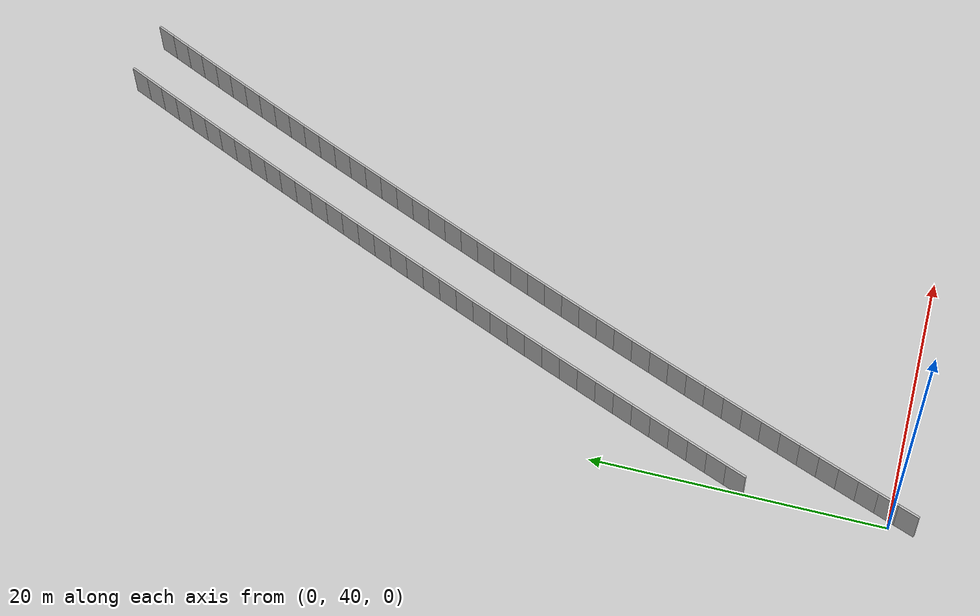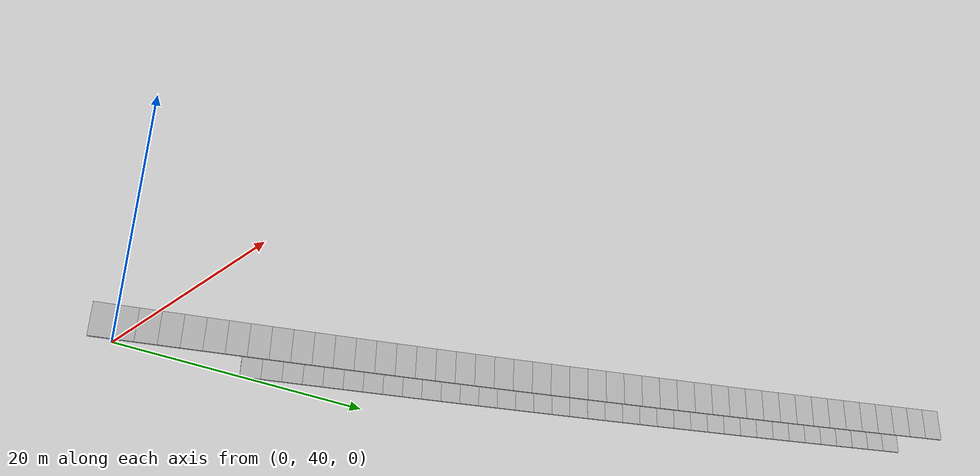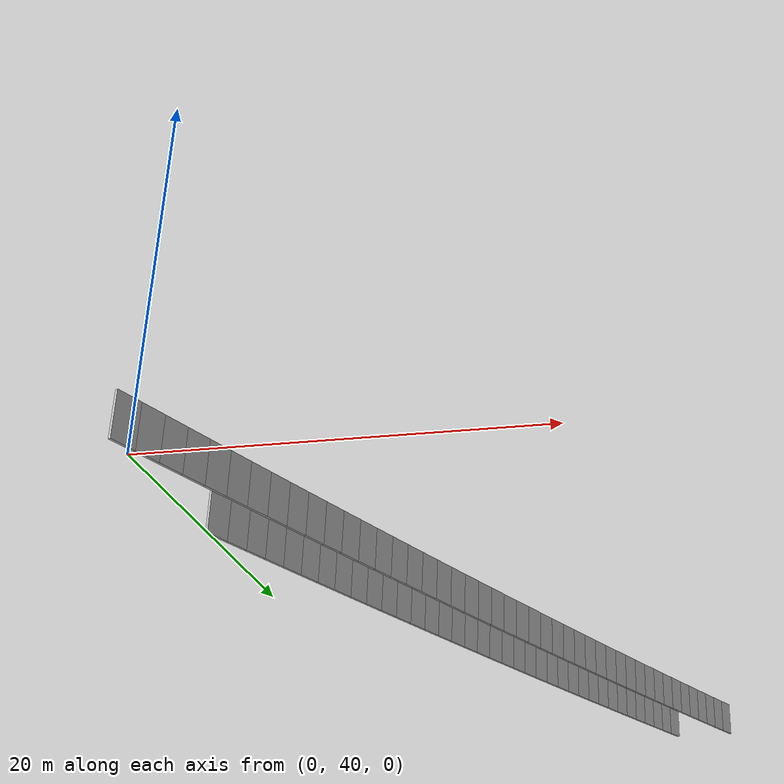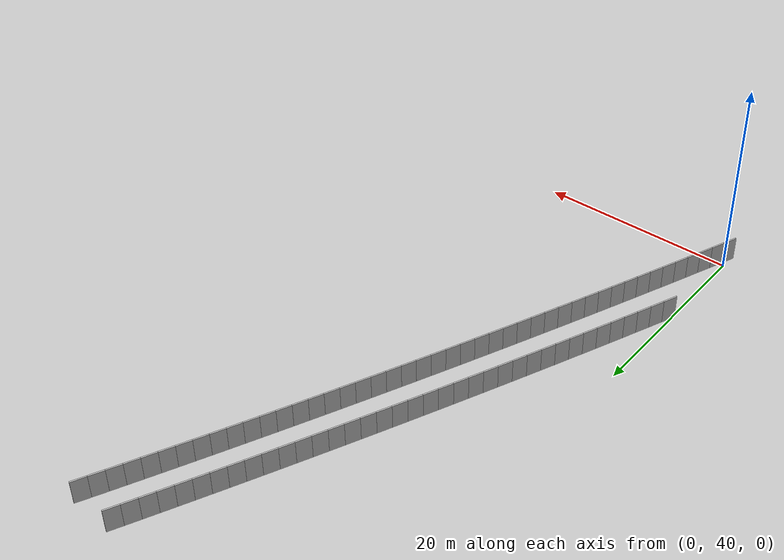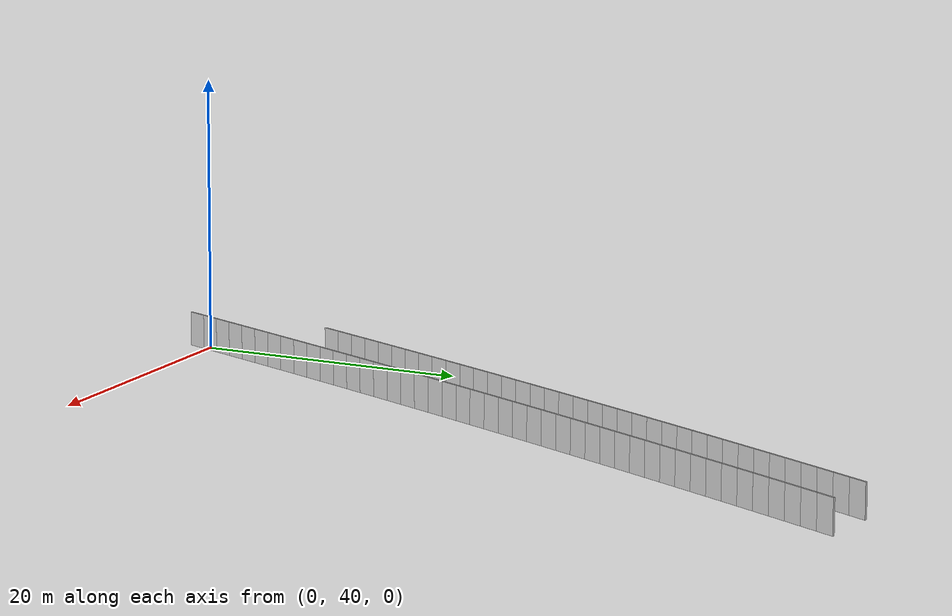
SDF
<?xml version="1.0" ?>
<sdf version="1.6">
  <model name="sps_0216">
    <pose frame="">0 0 0 0 -0 0</pose>
    <static>1</static>
    <self_collide>0</self_collide>
    <allow_auto_disable>0</allow_auto_disable>
    <link name="Wall4967">
      <kinematic>0</kinematic>
      <gravity>1</gravity>
      <self_collide>0</self_collide>
      <collision name="collision">
        <geometry>
          <box>
            <size>1.49666 0.15 2.5</size>
          </box>
        </geometry>
        <pose frame="">0 0 0 0 -0 0</pose>
      </collision>
      <visual name="visual">
        <geometry>
          <box>
            <size>1.49666 0.15 2.5</size>
          </box>
        </geometry>
        <pose frame="">0 0 0 0 -0 0</pose>
        <cast_shadows>1</cast_shadows>
        <transparency>0.0</transparency>
      </visual>
      <pose frame="">26.4168 99.3511 1.25 0 0 -2.01591</pose>
    </link>
    <link name="Wall4968">
      <kinematic>0</kinematic>
      <gravity>1</gravity>
      <self_collide>0</self_collide>
      <collision name="collision">
        <geometry>
          <box>
            <size>1.4965 0.15 2.5</size>
          </box>
        </geometry>
        <pose frame="">0 0 0 0 -0 0</pose>
      </collision>
      <visual name="visual">
        <geometry>
          <box>
            <size>1.4965 0.15 2.5</size>
          </box>
        </geometry>
        <pose frame="">0 0 0 0 -0 0</pose>
        <cast_shadows>1</cast_shadows>
        <transparency>0.0</transparency>
      </visual>
      <pose frame="">25.7736 97.9998 1.25 0 0 -2.01416</pose>
    </link>
    <link name="Wall4969">
      <kinematic>0</kinematic>
      <gravity>1</gravity>
      <self_collide>0</self_collide>
      <collision name="collision">
        <geometry>
          <box>
            <size>1.49654 0.15 2.5</size>
          </box>
        </geometry>
        <pose frame="">0 0 0 0 -0 0</pose>
      </collision>
      <visual name="visual">
        <geometry>
          <box>
            <size>1.49654 0.15 2.5</size>
          </box>
        </geometry>
        <pose frame="">0 0 0 0 -0 0</pose>
        <cast_shadows>1</cast_shadows>
        <transparency>0.0</transparency>
      </visual>
      <pose frame="">25.1327 96.6475 1.25 0 0 -2.0127</pose>
    </link>
    <link name="Wall4970">
      <kinematic>0</kinematic>
      <gravity>1</gravity>
      <self_collide>0</self_collide>
      <collision name="collision">
        <geometry>
          <box>
            <size>1.49654 0.15 2.5</size>
          </box>
        </geometry>
        <pose frame="">0 0 0 0 -0 0</pose>
      </collision>
      <visual name="visual">
        <geometry>
          <box>
            <size>1.49654 0.15 2.5</size>
          </box>
        </geometry>
        <pose frame="">0 0 0 0 -0 0</pose>
        <cast_shadows>1</cast_shadows>
        <transparency>0.0</transparency>
      </visual>
      <pose frame="">24.4937 95.2942 1.25 0 0 -2.01108</pose>
    </link>
    <link name="Wall4971">
      <kinematic>0</kinematic>
      <gravity>1</gravity>
      <self_collide>0</self_collide>
      <collision name="collision">
        <geometry>
          <box>
            <size>1.49647 0.15 2.5</size>
          </box>
        </geometry>
        <pose frame="">0 0 0 0 -0 0</pose>
      </collision>
      <visual name="visual">
        <geometry>
          <box>
            <size>1.49647 0.15 2.5</size>
          </box>
        </geometry>
        <pose frame="">0 0 0 0 -0 0</pose>
        <cast_shadows>1</cast_shadows>
        <transparency>0.0</transparency>
      </visual>
      <pose frame="">23.857 93.9399 1.25 0 0 -2.00943</pose>
    </link>
    <link name="Wall4972">
      <kinematic>0</kinematic>
      <gravity>1</gravity>
      <self_collide>0</self_collide>
      <collision name="collision">
        <geometry>
          <box>
            <size>1.49652 0.15 2.5</size>
          </box>
        </geometry>
        <pose frame="">0 0 0 0 -0 0</pose>
      </collision>
      <visual name="visual">
        <geometry>
          <box>
            <size>1.49652 0.15 2.5</size>
          </box>
        </geometry>
        <pose frame="">0 0 0 0 -0 0</pose>
        <cast_shadows>1</cast_shadows>
        <transparency>0.0</transparency>
      </visual>
      <pose frame="">23.2225 92.5846 1.25 0 0 -2.00798</pose>
    </link>
    <link name="Wall4973">
      <kinematic>0</kinematic>
      <gravity>1</gravity>
      <self_collide>0</self_collide>
      <collision name="collision">
        <geometry>
          <box>
            <size>1.49653 0.15 2.5</size>
          </box>
        </geometry>
        <pose frame="">0 0 0 0 -0 0</pose>
      </collision>
      <visual name="visual">
        <geometry>
          <box>
            <size>1.49653 0.15 2.5</size>
          </box>
        </geometry>
        <pose frame="">0 0 0 0 -0 0</pose>
        <cast_shadows>1</cast_shadows>
        <transparency>0.0</transparency>
      </visual>
      <pose frame="">22.59 91.2283 1.25 0 0 -2.00635</pose>
    </link>
    <link name="Wall4974">
      <kinematic>0</kinematic>
      <gravity>1</gravity>
      <self_collide>0</self_collide>
      <collision name="collision">
        <geometry>
          <box>
            <size>1.49649 0.15 2.5</size>
          </box>
        </geometry>
        <pose frame="">0 0 0 0 -0 0</pose>
      </collision>
      <visual name="visual">
        <geometry>
          <box>
            <size>1.49649 0.15 2.5</size>
          </box>
        </geometry>
        <pose frame="">0 0 0 0 -0 0</pose>
        <cast_shadows>1</cast_shadows>
        <transparency>0.0</transparency>
      </visual>
      <pose frame="">21.9596 89.871 1.25 0 0 -2.00475</pose>
    </link>
    <link name="Wall4975">
      <kinematic>0</kinematic>
      <gravity>1</gravity>
      <self_collide>0</self_collide>
      <collision name="collision">
        <geometry>
          <box>
            <size>1.49651 0.15 2.5</size>
          </box>
        </geometry>
        <pose frame="">0 0 0 0 -0 0</pose>
      </collision>
      <visual name="visual">
        <geometry>
          <box>
            <size>1.49651 0.15 2.5</size>
          </box>
        </geometry>
        <pose frame="">0 0 0 0 -0 0</pose>
        <cast_shadows>1</cast_shadows>
        <transparency>0.0</transparency>
      </visual>
      <pose frame="">21.3315 88.5127 1.25 0 0 -2.00312</pose>
    </link>
    <link name="Wall4976">
      <kinematic>0</kinematic>
      <gravity>1</gravity>
      <self_collide>0</self_collide>
      <collision name="collision">
        <geometry>
          <box>
            <size>1.49656 0.15 2.5</size>
          </box>
        </geometry>
        <pose frame="">0 0 0 0 -0 0</pose>
      </collision>
      <visual name="visual">
        <geometry>
          <box>
            <size>1.49656 0.15 2.5</size>
          </box>
        </geometry>
        <pose frame="">0 0 0 0 -0 0</pose>
        <cast_shadows>1</cast_shadows>
        <transparency>0.0</transparency>
      </visual>
      <pose frame="">20.7055 87.1534 1.25 0 0 -2.00163</pose>
    </link>
    <link name="Wall4977">
      <kinematic>0</kinematic>
      <gravity>1</gravity>
      <self_collide>0</self_collide>
      <collision name="collision">
        <geometry>
          <box>
            <size>1.49643 0.15 2.5</size>
          </box>
        </geometry>
        <pose frame="">0 0 0 0 -0 0</pose>
      </collision>
      <visual name="visual">
        <geometry>
          <box>
            <size>1.49643 0.15 2.5</size>
          </box>
        </geometry>
        <pose frame="">0 0 0 0 -0 0</pose>
        <cast_shadows>1</cast_shadows>
        <transparency>0.0</transparency>
      </visual>
      <pose frame="">20.0817 85.7931 1.25 0 0 -1.99987</pose>
    </link>
    <link name="Wall4978">
      <kinematic>0</kinematic>
      <gravity>1</gravity>
      <self_collide>0</self_collide>
      <collision name="collision">
        <geometry>
          <box>
            <size>1.49608 0.15 2.5</size>
          </box>
        </geometry>
        <pose frame="">0 0 0 0 -0 0</pose>
      </collision>
      <visual name="visual">
        <geometry>
          <box>
            <size>1.49608 0.15 2.5</size>
          </box>
        </geometry>
        <pose frame="">0 0 0 0 -0 0</pose>
        <cast_shadows>1</cast_shadows>
        <transparency>0.0</transparency>
      </visual>
      <pose frame="">19.4601 84.4321 1.25 0 0 -1.99868</pose>
    </link>
    <link name="Wall4979">
      <kinematic>0</kinematic>
      <gravity>1</gravity>
      <self_collide>0</self_collide>
      <collision name="collision">
        <geometry>
          <box>
            <size>1.49654 0.15 2.5</size>
          </box>
        </geometry>
        <pose frame="">0 0 0 0 -0 0</pose>
      </collision>
      <visual name="visual">
        <geometry>
          <box>
            <size>1.49654 0.15 2.5</size>
          </box>
        </geometry>
        <pose frame="">0 0 0 0 -0 0</pose>
        <cast_shadows>1</cast_shadows>
        <transparency>0.0</transparency>
      </visual>
      <pose frame="">18.8405 83.0701 1.25 0 0 -1.99679</pose>
    </link>
    <link name="Wall4980">
      <kinematic>0</kinematic>
      <gravity>1</gravity>
      <self_collide>0</self_collide>
      <collision name="collision">
        <geometry>
          <box>
            <size>1.4966 0.15 2.5</size>
          </box>
        </geometry>
        <pose frame="">0 0 0 0 -0 0</pose>
      </collision>
      <visual name="visual">
        <geometry>
          <box>
            <size>1.4966 0.15 2.5</size>
          </box>
        </geometry>
        <pose frame="">0 0 0 0 -0 0</pose>
        <cast_shadows>1</cast_shadows>
        <transparency>0.0</transparency>
      </visual>
      <pose frame="">18.2231 81.7068 1.25 0 0 -1.99529</pose>
    </link>
    <link name="Wall4981">
      <kinematic>0</kinematic>
      <gravity>1</gravity>
      <self_collide>0</self_collide>
      <collision name="collision">
        <geometry>
          <box>
            <size>1.49647 0.15 2.5</size>
          </box>
        </geometry>
        <pose frame="">0 0 0 0 -0 0</pose>
      </collision>
      <visual name="visual">
        <geometry>
          <box>
            <size>1.49647 0.15 2.5</size>
          </box>
        </geometry>
        <pose frame="">0 0 0 0 -0 0</pose>
        <cast_shadows>1</cast_shadows>
        <transparency>0.0</transparency>
      </visual>
      <pose frame="">17.6078 80.3426 1.25 0 0 -1.99372</pose>
    </link>
    <link name="Wall4982">
      <kinematic>0</kinematic>
      <gravity>1</gravity>
      <self_collide>0</self_collide>
      <collision name="collision">
        <geometry>
          <box>
            <size>1.49639 0.15 2.5</size>
          </box>
        </geometry>
        <pose frame="">0 0 0 0 -0 0</pose>
      </collision>
      <visual name="visual">
        <geometry>
          <box>
            <size>1.49639 0.15 2.5</size>
          </box>
        </geometry>
        <pose frame="">0 0 0 0 -0 0</pose>
        <cast_shadows>1</cast_shadows>
        <transparency>0.0</transparency>
      </visual>
      <pose frame="">16.9948 78.9775 1.25 0 0 -1.992</pose>
    </link>
    <link name="Wall4983">
      <kinematic>0</kinematic>
      <gravity>1</gravity>
      <self_collide>0</self_collide>
      <collision name="collision">
        <geometry>
          <box>
            <size>1.49668 0.15 2.5</size>
          </box>
        </geometry>
        <pose frame="">0 0 0 0 -0 0</pose>
      </collision>
      <visual name="visual">
        <geometry>
          <box>
            <size>1.49668 0.15 2.5</size>
          </box>
        </geometry>
        <pose frame="">0 0 0 0 -0 0</pose>
        <cast_shadows>1</cast_shadows>
        <transparency>0.0</transparency>
      </visual>
      <pose frame="">16.384 77.6113 1.25 0 0 -1.99044</pose>
    </link>
    <link name="Wall4984">
      <kinematic>0</kinematic>
      <gravity>1</gravity>
      <self_collide>0</self_collide>
      <collision name="collision">
        <geometry>
          <box>
            <size>1.49629 0.15 2.5</size>
          </box>
        </geometry>
        <pose frame="">0 0 0 0 -0 0</pose>
      </collision>
      <visual name="visual">
        <geometry>
          <box>
            <size>1.49629 0.15 2.5</size>
          </box>
        </geometry>
        <pose frame="">0 0 0 0 -0 0</pose>
        <cast_shadows>1</cast_shadows>
        <transparency>0.0</transparency>
      </visual>
      <pose frame="">15.7753 76.2442 1.25 0 0 -1.98895</pose>
    </link>
    <link name="Wall4985">
      <kinematic>0</kinematic>
      <gravity>1</gravity>
      <self_collide>0</self_collide>
      <collision name="collision">
        <geometry>
          <box>
            <size>1.49674 0.15 2.5</size>
          </box>
        </geometry>
        <pose frame="">0 0 0 0 -0 0</pose>
      </collision>
      <visual name="visual">
        <geometry>
          <box>
            <size>1.49674 0.15 2.5</size>
          </box>
        </geometry>
        <pose frame="">0 0 0 0 -0 0</pose>
        <cast_shadows>1</cast_shadows>
        <transparency>0.0</transparency>
      </visual>
      <pose frame="">15.1688 74.8761 1.25 0 0 -1.98721</pose>
    </link>
    <link name="Wall4986">
      <kinematic>0</kinematic>
      <gravity>1</gravity>
      <self_collide>0</self_collide>
      <collision name="collision">
        <geometry>
          <box>
            <size>1.4966 0.15 2.5</size>
          </box>
        </geometry>
        <pose frame="">0 0 0 0 -0 0</pose>
      </collision>
      <visual name="visual">
        <geometry>
          <box>
            <size>1.4966 0.15 2.5</size>
          </box>
        </geometry>
        <pose frame="">0 0 0 0 -0 0</pose>
        <cast_shadows>1</cast_shadows>
        <transparency>0.0</transparency>
      </visual>
      <pose frame="">14.5644 73.5069 1.25 0 0 -1.98578</pose>
    </link>
    <link name="Wall4987">
      <kinematic>0</kinematic>
      <gravity>1</gravity>
      <self_collide>0</self_collide>
      <collision name="collision">
        <geometry>
          <box>
            <size>1.49649 0.15 2.5</size>
          </box>
        </geometry>
        <pose frame="">0 0 0 0 -0 0</pose>
      </collision>
      <visual name="visual">
        <geometry>
          <box>
            <size>1.49649 0.15 2.5</size>
          </box>
        </geometry>
        <pose frame="">0 0 0 0 -0 0</pose>
        <cast_shadows>1</cast_shadows>
        <transparency>0.0</transparency>
      </visual>
      <pose frame="">13.9621 72.1369 1.25 0 0 -1.98421</pose>
    </link>
    <link name="Wall4988">
      <kinematic>0</kinematic>
      <gravity>1</gravity>
      <self_collide>0</self_collide>
      <collision name="collision">
        <geometry>
          <box>
            <size>1.49643 0.15 2.5</size>
          </box>
        </geometry>
        <pose frame="">0 0 0 0 -0 0</pose>
      </collision>
      <visual name="visual">
        <geometry>
          <box>
            <size>1.49643 0.15 2.5</size>
          </box>
        </geometry>
        <pose frame="">0 0 0 0 -0 0</pose>
        <cast_shadows>1</cast_shadows>
        <transparency>0.0</transparency>
      </visual>
      <pose frame="">13.3621 70.766 1.25 0 0 -1.98249</pose>
    </link>
    <link name="Wall4989">
      <kinematic>0</kinematic>
      <gravity>1</gravity>
      <self_collide>0</self_collide>
      <collision name="collision">
        <geometry>
          <box>
            <size>1.49652 0.15 2.5</size>
          </box>
        </geometry>
        <pose frame="">0 0 0 0 -0 0</pose>
      </collision>
      <visual name="visual">
        <geometry>
          <box>
            <size>1.49652 0.15 2.5</size>
          </box>
        </geometry>
        <pose frame="">0 0 0 0 -0 0</pose>
        <cast_shadows>1</cast_shadows>
        <transparency>0.0</transparency>
      </visual>
      <pose frame="">12.7642 69.3941 1.25 0 0 -1.981</pose>
    </link>
    <link name="Wall4990">
      <kinematic>0</kinematic>
      <gravity>1</gravity>
      <self_collide>0</self_collide>
      <collision name="collision">
        <geometry>
          <box>
            <size>1.49643 0.15 2.5</size>
          </box>
        </geometry>
        <pose frame="">0 0 0 0 -0 0</pose>
      </collision>
      <visual name="visual">
        <geometry>
          <box>
            <size>1.49643 0.15 2.5</size>
          </box>
        </geometry>
        <pose frame="">0 0 0 0 -0 0</pose>
        <cast_shadows>1</cast_shadows>
        <transparency>0.0</transparency>
      </visual>
      <pose frame="">12.1685 68.0213 1.25 0 0 -1.97942</pose>
    </link>
    <link name="Wall4991">
      <kinematic>0</kinematic>
      <gravity>1</gravity>
      <self_collide>0</self_collide>
      <collision name="collision">
        <geometry>
          <box>
            <size>1.49663 0.15 2.5</size>
          </box>
        </geometry>
        <pose frame="">0 0 0 0 -0 0</pose>
      </collision>
      <visual name="visual">
        <geometry>
          <box>
            <size>1.49663 0.15 2.5</size>
          </box>
        </geometry>
        <pose frame="">0 0 0 0 -0 0</pose>
        <cast_shadows>1</cast_shadows>
        <transparency>0.0</transparency>
      </visual>
      <pose frame="">11.575 66.6475 1.25 0 0 -1.97777</pose>
    </link>
    <link name="Wall4992">
      <kinematic>0</kinematic>
      <gravity>1</gravity>
      <self_collide>0</self_collide>
      <collision name="collision">
        <geometry>
          <box>
            <size>1.49656 0.15 2.5</size>
          </box>
        </geometry>
        <pose frame="">0 0 0 0 -0 0</pose>
      </collision>
      <visual name="visual">
        <geometry>
          <box>
            <size>1.49656 0.15 2.5</size>
          </box>
        </geometry>
        <pose frame="">0 0 0 0 -0 0</pose>
        <cast_shadows>1</cast_shadows>
        <transparency>0.0</transparency>
      </visual>
      <pose frame="">10.9836 65.2727 1.25 0 0 -1.97632</pose>
    </link>
    <link name="Wall4993">
      <kinematic>0</kinematic>
      <gravity>1</gravity>
      <self_collide>0</self_collide>
      <collision name="collision">
        <geometry>
          <box>
            <size>1.49655 0.15 2.5</size>
          </box>
        </geometry>
        <pose frame="">0 0 0 0 -0 0</pose>
      </collision>
      <visual name="visual">
        <geometry>
          <box>
            <size>1.49655 0.15 2.5</size>
          </box>
        </geometry>
        <pose frame="">0 0 0 0 -0 0</pose>
        <cast_shadows>1</cast_shadows>
        <transparency>0.0</transparency>
      </visual>
      <pose frame="">10.3945 63.897 1.25 0 0 -1.97455</pose>
    </link>
    <link name="Wall4994">
      <kinematic>0</kinematic>
      <gravity>1</gravity>
      <self_collide>0</self_collide>
      <collision name="collision">
        <geometry>
          <box>
            <size>1.49654 0.15 2.5</size>
          </box>
        </geometry>
        <pose frame="">0 0 0 0 -0 0</pose>
      </collision>
      <visual name="visual">
        <geometry>
          <box>
            <size>1.49654 0.15 2.5</size>
          </box>
        </geometry>
        <pose frame="">0 0 0 0 -0 0</pose>
        <cast_shadows>1</cast_shadows>
        <transparency>0.0</transparency>
      </visual>
      <pose frame="">9.80746 62.5204 1.25 0 0 -1.97318</pose>
    </link>
    <link name="Wall4995">
      <kinematic>0</kinematic>
      <gravity>1</gravity>
      <self_collide>0</self_collide>
      <collision name="collision">
        <geometry>
          <box>
            <size>1.49646 0.15 2.5</size>
          </box>
        </geometry>
        <pose frame="">0 0 0 0 -0 0</pose>
      </collision>
      <visual name="visual">
        <geometry>
          <box>
            <size>1.49646 0.15 2.5</size>
          </box>
        </geometry>
        <pose frame="">0 0 0 0 -0 0</pose>
        <cast_shadows>1</cast_shadows>
        <transparency>0.0</transparency>
      </visual>
      <pose frame="">9.22265 61.1429 1.25 0 0 -1.97138</pose>
    </link>
    <link name="Wall4996">
      <kinematic>0</kinematic>
      <gravity>1</gravity>
      <self_collide>0</self_collide>
      <collision name="collision">
        <geometry>
          <box>
            <size>1.49643 0.15 2.5</size>
          </box>
        </geometry>
        <pose frame="">0 0 0 0 -0 0</pose>
      </collision>
      <visual name="visual">
        <geometry>
          <box>
            <size>1.49643 0.15 2.5</size>
          </box>
        </geometry>
        <pose frame="">0 0 0 0 -0 0</pose>
        <cast_shadows>1</cast_shadows>
        <transparency>0.0</transparency>
      </visual>
      <pose frame="">8.64007 59.7645 1.25 0 0 -1.96997</pose>
    </link>
    <link name="Wall4997">
      <kinematic>0</kinematic>
      <gravity>1</gravity>
      <self_collide>0</self_collide>
      <collision name="collision">
        <geometry>
          <box>
            <size>1.49663 0.15 2.5</size>
          </box>
        </geometry>
        <pose frame="">0 0 0 0 -0 0</pose>
      </collision>
      <visual name="visual">
        <geometry>
          <box>
            <size>1.49663 0.15 2.5</size>
          </box>
        </geometry>
        <pose frame="">0 0 0 0 -0 0</pose>
        <cast_shadows>1</cast_shadows>
        <transparency>0.0</transparency>
      </visual>
      <pose frame="">8.05965 58.3851 1.25 0 0 -1.96819</pose>
    </link>
    <link name="Wall4998">
      <kinematic>0</kinematic>
      <gravity>1</gravity>
      <self_collide>0</self_collide>
      <collision name="collision">
        <geometry>
          <box>
            <size>1.49642 0.15 2.5</size>
          </box>
        </geometry>
        <pose frame="">0 0 0 0 -0 0</pose>
      </collision>
      <visual name="visual">
        <geometry>
          <box>
            <size>1.49642 0.15 2.5</size>
          </box>
        </geometry>
        <pose frame="">0 0 0 0 -0 0</pose>
        <cast_shadows>1</cast_shadows>
        <transparency>0.0</transparency>
      </visual>
      <pose frame="">7.48144 57.0048 1.25 0 0 -1.96679</pose>
    </link>
    <link name="Wall4999">
      <kinematic>0</kinematic>
      <gravity>1</gravity>
      <self_collide>0</self_collide>
      <collision name="collision">
        <geometry>
          <box>
            <size>1.49655 0.15 2.5</size>
          </box>
        </geometry>
        <pose frame="">0 0 0 0 -0 0</pose>
      </collision>
      <visual name="visual">
        <geometry>
          <box>
            <size>1.49655 0.15 2.5</size>
          </box>
        </geometry>
        <pose frame="">0 0 0 0 -0 0</pose>
        <cast_shadows>1</cast_shadows>
        <transparency>0.0</transparency>
      </visual>
      <pose frame="">6.90545 55.6236 1.25 0 0 -1.96499</pose>
    </link>
    <link name="Wall5000">
      <kinematic>0</kinematic>
      <gravity>1</gravity>
      <self_collide>0</self_collide>
      <collision name="collision">
        <geometry>
          <box>
            <size>1.49659 0.15 2.5</size>
          </box>
        </geometry>
        <pose frame="">0 0 0 0 -0 0</pose>
      </collision>
      <visual name="visual">
        <geometry>
          <box>
            <size>1.49659 0.15 2.5</size>
          </box>
        </geometry>
        <pose frame="">0 0 0 0 -0 0</pose>
        <cast_shadows>1</cast_shadows>
        <transparency>0.0</transparency>
      </visual>
      <pose frame="">6.33166 54.2414 1.25 0 0 -1.96356</pose>
    </link>
    <link name="Wall5001">
      <kinematic>0</kinematic>
      <gravity>1</gravity>
      <self_collide>0</self_collide>
      <collision name="collision">
        <geometry>
          <box>
            <size>1.49643 0.15 2.5</size>
          </box>
        </geometry>
        <pose frame="">0 0 0 0 -0 0</pose>
      </collision>
      <visual name="visual">
        <geometry>
          <box>
            <size>1.49643 0.15 2.5</size>
          </box>
        </geometry>
        <pose frame="">0 0 0 0 -0 0</pose>
        <cast_shadows>1</cast_shadows>
        <transparency>0.0</transparency>
      </visual>
      <pose frame="">5.75994 52.8584 1.25 0 0 -1.96202</pose>
    </link>
    <link name="Wall5002">
      <kinematic>0</kinematic>
      <gravity>1</gravity>
      <self_collide>0</self_collide>
      <collision name="collision">
        <geometry>
          <box>
            <size>1.49606 0.15 2.5</size>
          </box>
        </geometry>
        <pose frame="">0 0 0 0 -0 0</pose>
      </collision>
      <visual name="visual">
        <geometry>
          <box>
            <size>1.49606 0.15 2.5</size>
          </box>
        </geometry>
        <pose frame="">0 0 0 0 -0 0</pose>
        <cast_shadows>1</cast_shadows>
        <transparency>0.0</transparency>
      </visual>
      <pose frame="">5.19033 51.4748 1.25 0 0 -1.96067</pose>
    </link>
    <link name="Wall5003">
      <kinematic>0</kinematic>
      <gravity>1</gravity>
      <self_collide>0</self_collide>
      <collision name="collision">
        <geometry>
          <box>
            <size>1.49665 0.15 2.5</size>
          </box>
        </geometry>
        <pose frame="">0 0 0 0 -0 0</pose>
      </collision>
      <visual name="visual">
        <geometry>
          <box>
            <size>1.49665 0.15 2.5</size>
          </box>
        </geometry>
        <pose frame="">0 0 0 0 -0 0</pose>
        <cast_shadows>1</cast_shadows>
        <transparency>0.0</transparency>
      </visual>
      <pose frame="">4.62295 50.0902 1.25 0 0 -1.95874</pose>
    </link>
    <link name="Wall5004">
      <kinematic>0</kinematic>
      <gravity>1</gravity>
      <self_collide>0</self_collide>
      <collision name="collision">
        <geometry>
          <box>
            <size>1.49692 0.15 2.5</size>
          </box>
        </geometry>
        <pose frame="">0 0 0 0 -0 0</pose>
      </collision>
      <visual name="visual">
        <geometry>
          <box>
            <size>1.49692 0.15 2.5</size>
          </box>
        </geometry>
        <pose frame="">0 0 0 0 -0 0</pose>
        <cast_shadows>1</cast_shadows>
        <transparency>0.0</transparency>
      </visual>
      <pose frame="">4.05785 48.7042 1.25 0 0 -1.95713</pose>
    </link>
    <link name="Wall5005">
      <kinematic>0</kinematic>
      <gravity>1</gravity>
      <self_collide>0</self_collide>
      <collision name="collision">
        <geometry>
          <box>
            <size>1.49641 0.15 2.5</size>
          </box>
        </geometry>
        <pose frame="">0 0 0 0 -0 0</pose>
      </collision>
      <visual name="visual">
        <geometry>
          <box>
            <size>1.49641 0.15 2.5</size>
          </box>
        </geometry>
        <pose frame="">0 0 0 0 -0 0</pose>
        <cast_shadows>1</cast_shadows>
        <transparency>0.0</transparency>
      </visual>
      <pose frame="">3.49496 47.3174 1.25 0 0 -1.95564</pose>
    </link>
    <link name="Wall5006">
      <kinematic>0</kinematic>
      <gravity>1</gravity>
      <self_collide>0</self_collide>
      <collision name="collision">
        <geometry>
          <box>
            <size>1.49657 0.15 2.5</size>
          </box>
        </geometry>
        <pose frame="">0 0 0 0 -0 0</pose>
      </collision>
      <visual name="visual">
        <geometry>
          <box>
            <size>1.49657 0.15 2.5</size>
          </box>
        </geometry>
        <pose frame="">0 0 0 0 -0 0</pose>
        <cast_shadows>1</cast_shadows>
        <transparency>0.0</transparency>
      </visual>
      <pose frame="">2.93426 45.9299 1.25 0 0 -1.95405</pose>
    </link>
    <link name="Wall5007">
      <kinematic>0</kinematic>
      <gravity>1</gravity>
      <self_collide>0</self_collide>
      <collision name="collision">
        <geometry>
          <box>
            <size>1.4964 0.15 2.5</size>
          </box>
        </geometry>
        <pose frame="">0 0 0 0 -0 0</pose>
      </collision>
      <visual name="visual">
        <geometry>
          <box>
            <size>1.4964 0.15 2.5</size>
          </box>
        </geometry>
        <pose frame="">0 0 0 0 -0 0</pose>
        <cast_shadows>1</cast_shadows>
        <transparency>0.0</transparency>
      </visual>
      <pose frame="">2.37585 44.5415 1.25 0 0 -1.95234</pose>
    </link>
    <link name="Wall5008">
      <kinematic>0</kinematic>
      <gravity>1</gravity>
      <self_collide>0</self_collide>
      <collision name="collision">
        <geometry>
          <box>
            <size>1.49661 0.15 2.5</size>
          </box>
        </geometry>
        <pose frame="">0 0 0 0 -0 0</pose>
      </collision>
      <visual name="visual">
        <geometry>
          <box>
            <size>1.49661 0.15 2.5</size>
          </box>
        </geometry>
        <pose frame="">0 0 0 0 -0 0</pose>
        <cast_shadows>1</cast_shadows>
        <transparency>0.0</transparency>
      </visual>
      <pose frame="">1.81966 43.1522 1.25 0 0 -1.95083</pose>
    </link>
    <link name="Wall5009">
      <kinematic>0</kinematic>
      <gravity>1</gravity>
      <self_collide>0</self_collide>
      <collision name="collision">
        <geometry>
          <box>
            <size>1.49656 0.15 2.5</size>
          </box>
        </geometry>
        <pose frame="">0 0 0 0 -0 0</pose>
      </collision>
      <visual name="visual">
        <geometry>
          <box>
            <size>1.49656 0.15 2.5</size>
          </box>
        </geometry>
        <pose frame="">0 0 0 0 -0 0</pose>
        <cast_shadows>1</cast_shadows>
        <transparency>0.0</transparency>
      </visual>
      <pose frame="">1.26556 41.762 1.25 0 0 -1.94931</pose>
    </link>
    <link name="Wall5010">
      <kinematic>0</kinematic>
      <gravity>1</gravity>
      <self_collide>0</self_collide>
      <collision name="collision">
        <geometry>
          <box>
            <size>1.49647 0.15 2.5</size>
          </box>
        </geometry>
        <pose frame="">0 0 0 0 -0 0</pose>
      </collision>
      <visual name="visual">
        <geometry>
          <box>
            <size>1.49647 0.15 2.5</size>
          </box>
        </geometry>
        <pose frame="">0 0 0 0 -0 0</pose>
        <cast_shadows>1</cast_shadows>
        <transparency>0.0</transparency>
      </visual>
      <pose frame="">0.713554 40.371 1.25 0 0 -1.94784</pose>
    </link>
    <link name="Wall5011">
      <kinematic>0</kinematic>
      <gravity>1</gravity>
      <self_collide>0</self_collide>
      <collision name="collision">
        <geometry>
          <box>
            <size>1.49659 0.15 2.5</size>
          </box>
        </geometry>
        <pose frame="">0 0 0 0 -0 0</pose>
      </collision>
      <visual name="visual">
        <geometry>
          <box>
            <size>1.49659 0.15 2.5</size>
          </box>
        </geometry>
        <pose frame="">0 0 0 0 -0 0</pose>
        <cast_shadows>1</cast_shadows>
        <transparency>0.0</transparency>
      </visual>
      <pose frame="">0.163749 38.9791 1.25 0 0 -1.94615</pose>
    </link>
    <link name="Wall6764">
      <kinematic>0</kinematic>
      <gravity>1</gravity>
      <self_collide>0</self_collide>
      <collision name="collision">
        <geometry>
          <box>
            <size>1.50318 0.15 2.5</size>
          </box>
        </geometry>
        <pose frame="">0 0 0 0 -0 0</pose>
      </collision>
      <visual name="visual">
        <geometry>
          <box>
            <size>1.50318 0.15 2.5</size>
          </box>
        </geometry>
        <pose frame="">0 0 0 0 -0 0</pose>
        <cast_shadows>1</cast_shadows>
        <transparency>0.0</transparency>
      </visual>
      <pose frame="">22.035 99.7762 1.25 0 0 -2.01425</pose>
    </link>
    <link name="Wall6765">
      <kinematic>0</kinematic>
      <gravity>1</gravity>
      <self_collide>0</self_collide>
      <collision name="collision">
        <geometry>
          <box>
            <size>1.50313 0.15 2.5</size>
          </box>
        </geometry>
        <pose frame="">0 0 0 0 -0 0</pose>
      </collision>
      <visual name="visual">
        <geometry>
          <box>
            <size>1.50313 0.15 2.5</size>
          </box>
        </geometry>
        <pose frame="">0 0 0 0 -0 0</pose>
        <cast_shadows>1</cast_shadows>
        <transparency>0.0</transparency>
      </visual>
      <pose frame="">21.3912 98.4179 1.25 0 0 -2.01256</pose>
    </link>
    <link name="Wall6766">
      <kinematic>0</kinematic>
      <gravity>1</gravity>
      <self_collide>0</self_collide>
      <collision name="collision">
        <geometry>
          <box>
            <size>1.50301 0.15 2.5</size>
          </box>
        </geometry>
        <pose frame="">0 0 0 0 -0 0</pose>
      </collision>
      <visual name="visual">
        <geometry>
          <box>
            <size>1.50301 0.15 2.5</size>
          </box>
        </geometry>
        <pose frame="">0 0 0 0 -0 0</pose>
        <cast_shadows>1</cast_shadows>
        <transparency>0.0</transparency>
      </visual>
      <pose frame="">20.7494 97.0587 1.25 0 0 -2.01125</pose>
    </link>
    <link name="Wall6767">
      <kinematic>0</kinematic>
      <gravity>1</gravity>
      <self_collide>0</self_collide>
      <collision name="collision">
        <geometry>
          <box>
            <size>1.50313 0.15 2.5</size>
          </box>
        </geometry>
        <pose frame="">0 0 0 0 -0 0</pose>
      </collision>
      <visual name="visual">
        <geometry>
          <box>
            <size>1.50313 0.15 2.5</size>
          </box>
        </geometry>
        <pose frame="">0 0 0 0 -0 0</pose>
        <cast_shadows>1</cast_shadows>
        <transparency>0.0</transparency>
      </visual>
      <pose frame="">20.1099 95.6985 1.25 0 0 -2.00942</pose>
    </link>
    <link name="Wall6768">
      <kinematic>0</kinematic>
      <gravity>1</gravity>
      <self_collide>0</self_collide>
      <collision name="collision">
        <geometry>
          <box>
            <size>1.50311 0.15 2.5</size>
          </box>
        </geometry>
        <pose frame="">0 0 0 0 -0 0</pose>
      </collision>
      <visual name="visual">
        <geometry>
          <box>
            <size>1.50311 0.15 2.5</size>
          </box>
        </geometry>
        <pose frame="">0 0 0 0 -0 0</pose>
        <cast_shadows>1</cast_shadows>
        <transparency>0.0</transparency>
      </visual>
      <pose frame="">19.4726 94.3372 1.25 0 0 -2.00786</pose>
    </link>
    <link name="Wall6769">
      <kinematic>0</kinematic>
      <gravity>1</gravity>
      <self_collide>0</self_collide>
      <collision name="collision">
        <geometry>
          <box>
            <size>1.50312 0.15 2.5</size>
          </box>
        </geometry>
        <pose frame="">0 0 0 0 -0 0</pose>
      </collision>
      <visual name="visual">
        <geometry>
          <box>
            <size>1.50312 0.15 2.5</size>
          </box>
        </geometry>
        <pose frame="">0 0 0 0 -0 0</pose>
        <cast_shadows>1</cast_shadows>
        <transparency>0.0</transparency>
      </visual>
      <pose frame="">18.8374 92.9749 1.25 0 0 -2.00633</pose>
    </link>
    <link name="Wall6770">
      <kinematic>0</kinematic>
      <gravity>1</gravity>
      <self_collide>0</self_collide>
      <collision name="collision">
        <geometry>
          <box>
            <size>1.50294 0.15 2.5</size>
          </box>
        </geometry>
        <pose frame="">0 0 0 0 -0 0</pose>
      </collision>
      <visual name="visual">
        <geometry>
          <box>
            <size>1.50294 0.15 2.5</size>
          </box>
        </geometry>
        <pose frame="">0 0 0 0 -0 0</pose>
        <cast_shadows>1</cast_shadows>
        <transparency>0.0</transparency>
      </visual>
      <pose frame="">18.2043 91.6117 1.25 0 0 -2.00482</pose>
    </link>
    <link name="Wall6771">
      <kinematic>0</kinematic>
      <gravity>1</gravity>
      <self_collide>0</self_collide>
      <collision name="collision">
        <geometry>
          <box>
            <size>1.50312 0.15 2.5</size>
          </box>
        </geometry>
        <pose frame="">0 0 0 0 -0 0</pose>
      </collision>
      <visual name="visual">
        <geometry>
          <box>
            <size>1.50312 0.15 2.5</size>
          </box>
        </geometry>
        <pose frame="">0 0 0 0 -0 0</pose>
        <cast_shadows>1</cast_shadows>
        <transparency>0.0</transparency>
      </visual>
      <pose frame="">17.5734 90.2475 1.25 0 0 -2.00315</pose>
    </link>
    <link name="Wall6772">
      <kinematic>0</kinematic>
      <gravity>1</gravity>
      <self_collide>0</self_collide>
      <collision name="collision">
        <geometry>
          <box>
            <size>1.50317 0.15 2.5</size>
          </box>
        </geometry>
        <pose frame="">0 0 0 0 -0 0</pose>
      </collision>
      <visual name="visual">
        <geometry>
          <box>
            <size>1.50317 0.15 2.5</size>
          </box>
        </geometry>
        <pose frame="">0 0 0 0 -0 0</pose>
        <cast_shadows>1</cast_shadows>
        <transparency>0.0</transparency>
      </visual>
      <pose frame="">16.9445 88.8822 1.25 0 0 -2.00166</pose>
    </link>
    <link name="Wall6773">
      <kinematic>0</kinematic>
      <gravity>1</gravity>
      <self_collide>0</self_collide>
      <collision name="collision">
        <geometry>
          <box>
            <size>1.50309 0.15 2.5</size>
          </box>
        </geometry>
        <pose frame="">0 0 0 0 -0 0</pose>
      </collision>
      <visual name="visual">
        <geometry>
          <box>
            <size>1.50309 0.15 2.5</size>
          </box>
        </geometry>
        <pose frame="">0 0 0 0 -0 0</pose>
        <cast_shadows>1</cast_shadows>
        <transparency>0.0</transparency>
      </visual>
      <pose frame="">16.318 87.5159 1.25 0 0 -1.9999</pose>
    </link>
    <link name="Wall6774">
      <kinematic>0</kinematic>
      <gravity>1</gravity>
      <self_collide>0</self_collide>
      <collision name="collision">
        <geometry>
          <box>
            <size>1.50287 0.15 2.5</size>
          </box>
        </geometry>
        <pose frame="">0 0 0 0 -0 0</pose>
      </collision>
      <visual name="visual">
        <geometry>
          <box>
            <size>1.50287 0.15 2.5</size>
          </box>
        </geometry>
        <pose frame="">0 0 0 0 -0 0</pose>
        <cast_shadows>1</cast_shadows>
        <transparency>0.0</transparency>
      </visual>
      <pose frame="">15.6937 86.1487 1.25 0 0 -1.9984</pose>
    </link>
    <link name="Wall6775">
      <kinematic>0</kinematic>
      <gravity>1</gravity>
      <self_collide>0</self_collide>
      <collision name="collision">
        <geometry>
          <box>
            <size>1.50272 0.15 2.5</size>
          </box>
        </geometry>
        <pose frame="">0 0 0 0 -0 0</pose>
      </collision>
      <visual name="visual">
        <geometry>
          <box>
            <size>1.50272 0.15 2.5</size>
          </box>
        </geometry>
        <pose frame="">0 0 0 0 -0 0</pose>
        <cast_shadows>1</cast_shadows>
        <transparency>0.0</transparency>
      </visual>
      <pose frame="">15.0713 84.7808 1.25 0 0 -1.99711</pose>
    </link>
    <link name="Wall6776">
      <kinematic>0</kinematic>
      <gravity>1</gravity>
      <self_collide>0</self_collide>
      <collision name="collision">
        <geometry>
          <box>
            <size>1.50299 0.15 2.5</size>
          </box>
        </geometry>
        <pose frame="">0 0 0 0 -0 0</pose>
      </collision>
      <visual name="visual">
        <geometry>
          <box>
            <size>1.50299 0.15 2.5</size>
          </box>
        </geometry>
        <pose frame="">0 0 0 0 -0 0</pose>
        <cast_shadows>1</cast_shadows>
        <transparency>0.0</transparency>
      </visual>
      <pose frame="">14.4512 83.4119 1.25 0 0 -1.99524</pose>
    </link>
    <link name="Wall6777">
      <kinematic>0</kinematic>
      <gravity>1</gravity>
      <self_collide>0</self_collide>
      <collision name="collision">
        <geometry>
          <box>
            <size>1.50317 0.15 2.5</size>
          </box>
        </geometry>
        <pose frame="">0 0 0 0 -0 0</pose>
      </collision>
      <visual name="visual">
        <geometry>
          <box>
            <size>1.50317 0.15 2.5</size>
          </box>
        </geometry>
        <pose frame="">0 0 0 0 -0 0</pose>
        <cast_shadows>1</cast_shadows>
        <transparency>0.0</transparency>
      </visual>
      <pose frame="">13.8333 82.0417 1.25 0 0 -1.99363</pose>
    </link>
    <link name="Wall6778">
      <kinematic>0</kinematic>
      <gravity>1</gravity>
      <self_collide>0</self_collide>
      <collision name="collision">
        <geometry>
          <box>
            <size>1.503 0.15 2.5</size>
          </box>
        </geometry>
        <pose frame="">0 0 0 0 -0 0</pose>
      </collision>
      <visual name="visual">
        <geometry>
          <box>
            <size>1.503 0.15 2.5</size>
          </box>
        </geometry>
        <pose frame="">0 0 0 0 -0 0</pose>
        <cast_shadows>1</cast_shadows>
        <transparency>0.0</transparency>
      </visual>
      <pose frame="">13.2176 80.6705 1.25 0 0 -1.99208</pose>
    </link>
    <link name="Wall6779">
      <kinematic>0</kinematic>
      <gravity>1</gravity>
      <self_collide>0</self_collide>
      <collision name="collision">
        <geometry>
          <box>
            <size>1.50302 0.15 2.5</size>
          </box>
        </geometry>
        <pose frame="">0 0 0 0 -0 0</pose>
      </collision>
      <visual name="visual">
        <geometry>
          <box>
            <size>1.50302 0.15 2.5</size>
          </box>
        </geometry>
        <pose frame="">0 0 0 0 -0 0</pose>
        <cast_shadows>1</cast_shadows>
        <transparency>0.0</transparency>
      </visual>
      <pose frame="">12.6041 79.2984 1.25 0 0 -1.99043</pose>
    </link>
    <link name="Wall6780">
      <kinematic>0</kinematic>
      <gravity>1</gravity>
      <self_collide>0</self_collide>
      <collision name="collision">
        <geometry>
          <box>
            <size>1.50312 0.15 2.5</size>
          </box>
        </geometry>
        <pose frame="">0 0 0 0 -0 0</pose>
      </collision>
      <visual name="visual">
        <geometry>
          <box>
            <size>1.50312 0.15 2.5</size>
          </box>
        </geometry>
        <pose frame="">0 0 0 0 -0 0</pose>
        <cast_shadows>1</cast_shadows>
        <transparency>0.0</transparency>
      </visual>
      <pose frame="">11.9927 77.9253 1.25 0 0 -1.98898</pose>
    </link>
    <link name="Wall6781">
      <kinematic>0</kinematic>
      <gravity>1</gravity>
      <self_collide>0</self_collide>
      <collision name="collision">
        <geometry>
          <box>
            <size>1.50322 0.15 2.5</size>
          </box>
        </geometry>
        <pose frame="">0 0 0 0 -0 0</pose>
      </collision>
      <visual name="visual">
        <geometry>
          <box>
            <size>1.50322 0.15 2.5</size>
          </box>
        </geometry>
        <pose frame="">0 0 0 0 -0 0</pose>
        <cast_shadows>1</cast_shadows>
        <transparency>0.0</transparency>
      </visual>
      <pose frame="">11.3834 76.5511 1.25 0 0 -1.98721</pose>
    </link>
    <link name="Wall6782">
      <kinematic>0</kinematic>
      <gravity>1</gravity>
      <self_collide>0</self_collide>
      <collision name="collision">
        <geometry>
          <box>
            <size>1.50299 0.15 2.5</size>
          </box>
        </geometry>
        <pose frame="">0 0 0 0 -0 0</pose>
      </collision>
      <visual name="visual">
        <geometry>
          <box>
            <size>1.50299 0.15 2.5</size>
          </box>
        </geometry>
        <pose frame="">0 0 0 0 -0 0</pose>
        <cast_shadows>1</cast_shadows>
        <transparency>0.0</transparency>
      </visual>
      <pose frame="">10.7765 75.176 1.25 0 0 -1.98577</pose>
    </link>
    <link name="Wall6783">
      <kinematic>0</kinematic>
      <gravity>1</gravity>
      <self_collide>0</self_collide>
      <collision name="collision">
        <geometry>
          <box>
            <size>1.50319 0.15 2.5</size>
          </box>
        </geometry>
        <pose frame="">0 0 0 0 -0 0</pose>
      </collision>
      <visual name="visual">
        <geometry>
          <box>
            <size>1.50319 0.15 2.5</size>
          </box>
        </geometry>
        <pose frame="">0 0 0 0 -0 0</pose>
        <cast_shadows>1</cast_shadows>
        <transparency>0.0</transparency>
      </visual>
      <pose frame="">10.1716 73.8 1.25 0 0 -1.98416</pose>
    </link>
    <link name="Wall6784">
      <kinematic>0</kinematic>
      <gravity>1</gravity>
      <self_collide>0</self_collide>
      <collision name="collision">
        <geometry>
          <box>
            <size>1.5031 0.15 2.5</size>
          </box>
        </geometry>
        <pose frame="">0 0 0 0 -0 0</pose>
      </collision>
      <visual name="visual">
        <geometry>
          <box>
            <size>1.5031 0.15 2.5</size>
          </box>
        </geometry>
        <pose frame="">0 0 0 0 -0 0</pose>
        <cast_shadows>1</cast_shadows>
        <transparency>0.0</transparency>
      </visual>
      <pose frame="">9.56884 72.423 1.25 0 0 -1.98259</pose>
    </link>
    <link name="Wall6785">
      <kinematic>0</kinematic>
      <gravity>1</gravity>
      <self_collide>0</self_collide>
      <collision name="collision">
        <geometry>
          <box>
            <size>1.50303 0.15 2.5</size>
          </box>
        </geometry>
        <pose frame="">0 0 0 0 -0 0</pose>
      </collision>
      <visual name="visual">
        <geometry>
          <box>
            <size>1.50303 0.15 2.5</size>
          </box>
        </geometry>
        <pose frame="">0 0 0 0 -0 0</pose>
        <cast_shadows>1</cast_shadows>
        <transparency>0.0</transparency>
      </visual>
      <pose frame="">8.96834 71.0451 1.25 0 0 -1.98097</pose>
    </link>
    <link name="Wall6786">
      <kinematic>0</kinematic>
      <gravity>1</gravity>
      <self_collide>0</self_collide>
      <collision name="collision">
        <geometry>
          <box>
            <size>1.50297 0.15 2.5</size>
          </box>
        </geometry>
        <pose frame="">0 0 0 0 -0 0</pose>
      </collision>
      <visual name="visual">
        <geometry>
          <box>
            <size>1.50297 0.15 2.5</size>
          </box>
        </geometry>
        <pose frame="">0 0 0 0 -0 0</pose>
        <cast_shadows>1</cast_shadows>
        <transparency>0.0</transparency>
      </visual>
      <pose frame="">8.37005 69.6663 1.25 0 0 -1.97944</pose>
    </link>
    <link name="Wall6787">
      <kinematic>0</kinematic>
      <gravity>1</gravity>
      <self_collide>0</self_collide>
      <collision name="collision">
        <geometry>
          <box>
            <size>1.50319 0.15 2.5</size>
          </box>
        </geometry>
        <pose frame="">0 0 0 0 -0 0</pose>
      </collision>
      <visual name="visual">
        <geometry>
          <box>
            <size>1.50319 0.15 2.5</size>
          </box>
        </geometry>
        <pose frame="">0 0 0 0 -0 0</pose>
        <cast_shadows>1</cast_shadows>
        <transparency>0.0</transparency>
      </visual>
      <pose frame="">7.77395 68.2865 1.25 0 0 -1.97774</pose>
    </link>
    <link name="Wall6788">
      <kinematic>0</kinematic>
      <gravity>1</gravity>
      <self_collide>0</self_collide>
      <collision name="collision">
        <geometry>
          <box>
            <size>1.50302 0.15 2.5</size>
          </box>
        </geometry>
        <pose frame="">0 0 0 0 -0 0</pose>
      </collision>
      <visual name="visual">
        <geometry>
          <box>
            <size>1.50302 0.15 2.5</size>
          </box>
        </geometry>
        <pose frame="">0 0 0 0 -0 0</pose>
        <cast_shadows>1</cast_shadows>
        <transparency>0.0</transparency>
      </visual>
      <pose frame="">7.18005 66.9057 1.25 0 0 -1.97624</pose>
    </link>
    <link name="Wall6789">
      <kinematic>0</kinematic>
      <gravity>1</gravity>
      <self_collide>0</self_collide>
      <collision name="collision">
        <geometry>
          <box>
            <size>1.50308 0.15 2.5</size>
          </box>
        </geometry>
        <pose frame="">0 0 0 0 -0 0</pose>
      </collision>
      <visual name="visual">
        <geometry>
          <box>
            <size>1.50308 0.15 2.5</size>
          </box>
        </geometry>
        <pose frame="">0 0 0 0 -0 0</pose>
        <cast_shadows>1</cast_shadows>
        <transparency>0.0</transparency>
      </visual>
      <pose frame="">6.58834 65.524 1.25 0 0 -1.97459</pose>
    </link>
    <link name="Wall6790">
      <kinematic>0</kinematic>
      <gravity>1</gravity>
      <self_collide>0</self_collide>
      <collision name="collision">
        <geometry>
          <box>
            <size>1.50322 0.15 2.5</size>
          </box>
        </geometry>
        <pose frame="">0 0 0 0 -0 0</pose>
      </collision>
      <visual name="visual">
        <geometry>
          <box>
            <size>1.50322 0.15 2.5</size>
          </box>
        </geometry>
        <pose frame="">0 0 0 0 -0 0</pose>
        <cast_shadows>1</cast_shadows>
        <transparency>0.0</transparency>
      </visual>
      <pose frame="">5.99874 64.1413 1.25 0 0 -1.97314</pose>
    </link>
    <link name="Wall6791">
      <kinematic>0</kinematic>
      <gravity>1</gravity>
      <self_collide>0</self_collide>
      <collision name="collision">
        <geometry>
          <box>
            <size>1.50305 0.15 2.5</size>
          </box>
        </geometry>
        <pose frame="">0 0 0 0 -0 0</pose>
      </collision>
      <visual name="visual">
        <geometry>
          <box>
            <size>1.50305 0.15 2.5</size>
          </box>
        </geometry>
        <pose frame="">0 0 0 0 -0 0</pose>
        <cast_shadows>1</cast_shadows>
        <transparency>0.0</transparency>
      </visual>
      <pose frame="">5.41134 62.7577 1.25 0 0 -1.97142</pose>
    </link>
    <link name="Wall6792">
      <kinematic>0</kinematic>
      <gravity>1</gravity>
      <self_collide>0</self_collide>
      <collision name="collision">
        <geometry>
          <box>
            <size>1.50316 0.15 2.5</size>
          </box>
        </geometry>
        <pose frame="">0 0 0 0 -0 0</pose>
      </collision>
      <visual name="visual">
        <geometry>
          <box>
            <size>1.50316 0.15 2.5</size>
          </box>
        </geometry>
        <pose frame="">0 0 0 0 -0 0</pose>
        <cast_shadows>1</cast_shadows>
        <transparency>0.0</transparency>
      </visual>
      <pose frame="">4.82616 61.3732 1.25 0 0 -1.96994</pose>
    </link>
    <link name="Wall6793">
      <kinematic>0</kinematic>
      <gravity>1</gravity>
      <self_collide>0</self_collide>
      <collision name="collision">
        <geometry>
          <box>
            <size>1.50333 0.15 2.5</size>
          </box>
        </geometry>
        <pose frame="">0 0 0 0 -0 0</pose>
      </collision>
      <visual name="visual">
        <geometry>
          <box>
            <size>1.50333 0.15 2.5</size>
          </box>
        </geometry>
        <pose frame="">0 0 0 0 -0 0</pose>
        <cast_shadows>1</cast_shadows>
        <transparency>0.0</transparency>
      </visual>
      <pose frame="">4.24316 59.9876 1.25 0 0 -1.96821</pose>
    </link>
    <link name="Wall6794">
      <kinematic>0</kinematic>
      <gravity>1</gravity>
      <self_collide>0</self_collide>
      <collision name="collision">
        <geometry>
          <box>
            <size>1.50308 0.15 2.5</size>
          </box>
        </geometry>
        <pose frame="">0 0 0 0 -0 0</pose>
      </collision>
      <visual name="visual">
        <geometry>
          <box>
            <size>1.50308 0.15 2.5</size>
          </box>
        </geometry>
        <pose frame="">0 0 0 0 -0 0</pose>
        <cast_shadows>1</cast_shadows>
        <transparency>0.0</transparency>
      </visual>
      <pose frame="">3.66244 58.6011 1.25 0 0 -1.96666</pose>
    </link>
    <link name="Wall6795">
      <kinematic>0</kinematic>
      <gravity>1</gravity>
      <self_collide>0</self_collide>
      <collision name="collision">
        <geometry>
          <box>
            <size>1.50291 0.15 2.5</size>
          </box>
        </geometry>
        <pose frame="">0 0 0 0 -0 0</pose>
      </collision>
      <visual name="visual">
        <geometry>
          <box>
            <size>1.50291 0.15 2.5</size>
          </box>
        </geometry>
        <pose frame="">0 0 0 0 -0 0</pose>
        <cast_shadows>1</cast_shadows>
        <transparency>0.0</transparency>
      </visual>
      <pose frame="">3.08395 57.2139 1.25 0 0 -1.96512</pose>
    </link>
    <link name="Wall6796">
      <kinematic>0</kinematic>
      <gravity>1</gravity>
      <self_collide>0</self_collide>
      <collision name="collision">
        <geometry>
          <box>
            <size>1.5032 0.15 2.5</size>
          </box>
        </geometry>
        <pose frame="">0 0 0 0 -0 0</pose>
      </collision>
      <visual name="visual">
        <geometry>
          <box>
            <size>1.5032 0.15 2.5</size>
          </box>
        </geometry>
        <pose frame="">0 0 0 0 -0 0</pose>
        <cast_shadows>1</cast_shadows>
        <transparency>0.0</transparency>
      </visual>
      <pose frame="">2.50765 55.8257 1.25 0 0 -1.96346</pose>
    </link>
    <link name="Wall6797">
      <kinematic>0</kinematic>
      <gravity>1</gravity>
      <self_collide>0</self_collide>
      <collision name="collision">
        <geometry>
          <box>
            <size>1.50309 0.15 2.5</size>
          </box>
        </geometry>
        <pose frame="">0 0 0 0 -0 0</pose>
      </collision>
      <visual name="visual">
        <geometry>
          <box>
            <size>1.50309 0.15 2.5</size>
          </box>
        </geometry>
        <pose frame="">0 0 0 0 -0 0</pose>
        <cast_shadows>1</cast_shadows>
        <transparency>0.0</transparency>
      </visual>
      <pose frame="">1.93355 54.4365 1.25 0 0 -1.9619</pose>
    </link>
    <link name="Wall6798">
      <kinematic>0</kinematic>
      <gravity>1</gravity>
      <self_collide>0</self_collide>
      <collision name="collision">
        <geometry>
          <box>
            <size>1.50311 0.15 2.5</size>
          </box>
        </geometry>
        <pose frame="">0 0 0 0 -0 0</pose>
      </collision>
      <visual name="visual">
        <geometry>
          <box>
            <size>1.50311 0.15 2.5</size>
          </box>
        </geometry>
        <pose frame="">0 0 0 0 -0 0</pose>
        <cast_shadows>1</cast_shadows>
        <transparency>0.0</transparency>
      </visual>
      <pose frame="">1.36156 53.0465 1.25 0 0 -1.96045</pose>
    </link>
    <link name="Wall6799">
      <kinematic>0</kinematic>
      <gravity>1</gravity>
      <self_collide>0</self_collide>
      <collision name="collision">
        <geometry>
          <box>
            <size>1.50262 0.15 2.5</size>
          </box>
        </geometry>
        <pose frame="">0 0 0 0 -0 0</pose>
      </collision>
      <visual name="visual">
        <geometry>
          <box>
            <size>1.50262 0.15 2.5</size>
          </box>
        </geometry>
        <pose frame="">0 0 0 0 -0 0</pose>
        <cast_shadows>1</cast_shadows>
        <transparency>0.0</transparency>
      </visual>
      <pose frame="">0.791679 51.6559 1.25 0 0 -1.959</pose>
    </link>
    <link name="Wall6800">
      <kinematic>0</kinematic>
      <gravity>1</gravity>
      <self_collide>0</self_collide>
      <collision name="collision">
        <geometry>
          <box>
            <size>1.50319 0.15 2.5</size>
          </box>
        </geometry>
        <pose frame="">0 0 0 0 -0 0</pose>
      </collision>
      <visual name="visual">
        <geometry>
          <box>
            <size>1.50319 0.15 2.5</size>
          </box>
        </geometry>
        <pose frame="">0 0 0 0 -0 0</pose>
        <cast_shadows>1</cast_shadows>
        <transparency>0.0</transparency>
      </visual>
      <pose frame="">0.224082 50.2643 1.25 0 0 -1.95714</pose>
    </link>
  </model>
</sdf>
